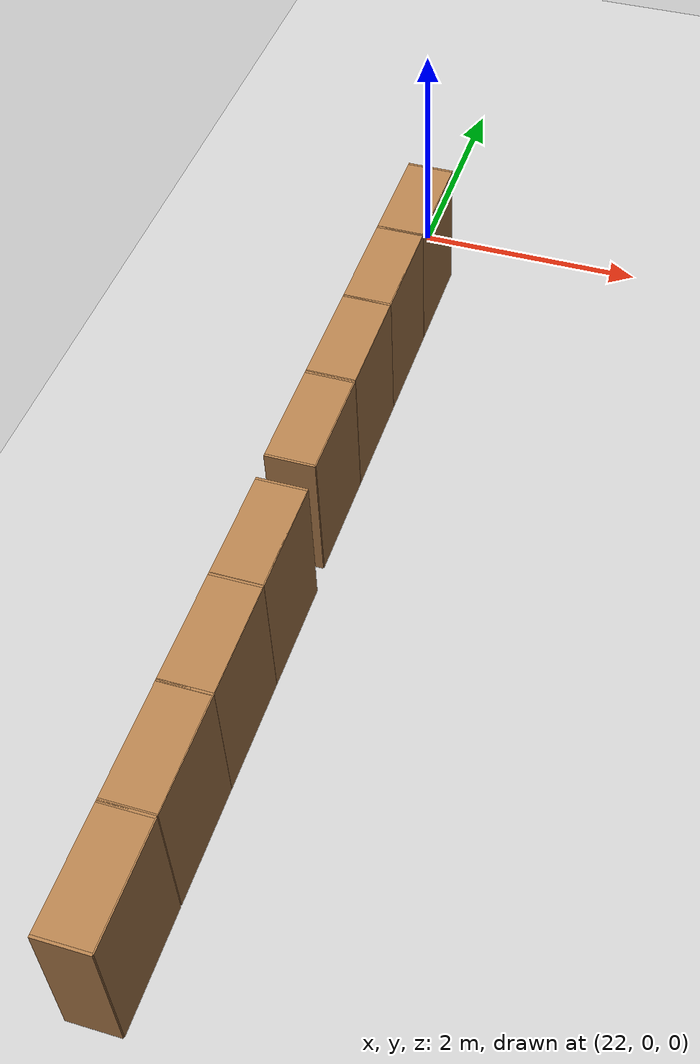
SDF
<sdf version="1.6">
 <world name="default">
  <model name="ground_plane">
   <static>1</static>
   <link name="link">
    <collision name="collision">
     <geometry><plane><normal>0 0 1</normal><size>100 100</size></plane></geometry>
     <surface><friction><ode><mu>100</mu><mu2>50</mu2></ode></friction></surface>
    </collision>
    <visual name="visual">
     <cast_shadows>0</cast_shadows>
     <geometry><plane><normal>0 0 1</normal><size>100 100</size></plane></geometry>
     <material>
      <script><uri>file://media/materials/scripts/gazebo.material</uri><name>Gazebo/Grey</name></script>
     </material>
    </visual>
   </link>
  </model>
  <model name="Bookself-4_clone_14_clone_3_clone_clone_1">
   <model name="Bookself-3">
    <model name="bookshelf_0">
     <static>1</static>
     <link name="link">
      <inertial><mass>1</mass></inertial>
      <collision name="back">
       <pose>0 0.005 0.6 0 -0 0</pose>
       <geometry><box><size>0.9 0.01 1.2</size></box></geometry>
      </collision>
      <visual name="visual1">
       <pose>0 0.005 0.6 0 -0 0</pose>
       <geometry><box><size>0.9 0.01 1.2</size></box></geometry>
       <material>
        <script><uri>file://media/materials/scripts/gazebo.material</uri><name>Gazebo/Wood</name></script>
       </material>
      </visual>
      <collision name="left_side">
       <pose>0.45 -0.195 0.6 0 -0 0</pose>
       <geometry><box><size>0.02 0.4 1.2</size></box></geometry>
      </collision>
      <visual name="visual2">
       <pose>0.45 -0.195 0.6 0 -0 0</pose>
       <geometry><box><size>0.02 0.4 1.2</size></box></geometry>
       <material>
        <script><uri>file://media/materials/scripts/gazebo.material</uri><name>Gazebo/Wood</name></script>
       </material>
      </visual>
      <collision name="right_side">
       <pose>-0.45 -0.195 0.6 0 -0 0</pose>
       <geometry><box><size>0.02 0.4 1.2</size></box></geometry>
      </collision>
      <visual name="visual3">
       <pose>-0.45 -0.195 0.6 0 -0 0</pose>
       <geometry><box><size>0.02 0.4 1.2</size></box></geometry>
       <material>
        <script><uri>file://media/materials/scripts/gazebo.material</uri><name>Gazebo/Wood</name></script>
       </material>
      </visual>
      <collision name="bottom">
       <pose>0 -0.195 0.03 0 -0 0</pose>
       <geometry><box><size>0.88 0.4 0.06</size></box></geometry>
      </collision>
      <visual name="visual4">
       <pose>0 -0.195 0.03 0 -0 0</pose>
       <geometry><box><size>0.88 0.4 0.06</size></box></geometry>
       <material>
        <script><uri>file://media/materials/scripts/gazebo.material</uri><name>Gazebo/Wood</name></script>
       </material>
      </visual>
      <collision name="top">
       <pose>0 -0.195 1.19 0 -0 0</pose>
       <geometry><box><size>0.88 0.4 0.02</size></box></geometry>
      </collision>
      <visual name="visual5">
       <pose>0 -0.195 1.19 0 -0 0</pose>
       <geometry><box><size>0.88 0.4 0.02</size></box></geometry>
       <material>
        <script><uri>file://media/materials/scripts/gazebo.material</uri><name>Gazebo/Wood</name></script>
       </material>
      </visual>
      <collision name="low_shelf">
       <pose>0 -0.195 0.43 0 -0 0</pose>
       <geometry><box><size>0.88 0.4 0.02</size></box></geometry>
      </collision>
      <visual name="visual6">
       <pose>0 -0.195 0.43 0 -0 0</pose>
       <geometry><box><size>0.88 0.4 0.02</size></box></geometry>
       <material>
        <script><uri>file://media/materials/scripts/gazebo.material</uri><name>Gazebo/Wood</name></script>
       </material>
      </visual>
      <collision name="high_shelf">
       <pose>0 -0.195 0.8 0 -0 0</pose>
       <geometry><box><size>0.88 0.4 0.02</size></box></geometry>
      </collision>
      <visual name="visual7">
       <pose>0 -0.195 0.8 0 -0 0</pose>
       <geometry><box><size>0.88 0.4 0.02</size></box></geometry>
       <material>
        <script><uri>file://media/materials/scripts/gazebo.material</uri><name>Gazebo/Wood</name></script>
       </material>
      </visual>
     </link>
     <pose>-0.903039 0 0 0 -0 0</pose>
    </model>
    <model name="bookshelf_1">
     <static>1</static>
     <link name="link">
      <inertial><mass>1</mass></inertial>
      <collision name="back">
       <pose>0 0.005 0.6 0 -0 0</pose>
       <geometry><box><size>0.9 0.01 1.2</size></box></geometry>
      </collision>
      <visual name="visual1">
       <pose>0 0.005 0.6 0 -0 0</pose>
       <geometry><box><size>0.9 0.01 1.2</size></box></geometry>
       <material>
        <script><uri>file://media/materials/scripts/gazebo.material</uri><name>Gazebo/Wood</name></script>
       </material>
      </visual>
      <collision name="left_side">
       <pose>0.45 -0.195 0.6 0 -0 0</pose>
       <geometry><box><size>0.02 0.4 1.2</size></box></geometry>
      </collision>
      <visual name="visual2">
       <pose>0.45 -0.195 0.6 0 -0 0</pose>
       <geometry><box><size>0.02 0.4 1.2</size></box></geometry>
       <material>
        <script><uri>file://media/materials/scripts/gazebo.material</uri><name>Gazebo/Wood</name></script>
       </material>
      </visual>
      <collision name="right_side">
       <pose>-0.45 -0.195 0.6 0 -0 0</pose>
       <geometry><box><size>0.02 0.4 1.2</size></box></geometry>
      </collision>
      <visual name="visual3">
       <pose>-0.45 -0.195 0.6 0 -0 0</pose>
       <geometry><box><size>0.02 0.4 1.2</size></box></geometry>
       <material>
        <script><uri>file://media/materials/scripts/gazebo.material</uri><name>Gazebo/Wood</name></script>
       </material>
      </visual>
      <collision name="bottom">
       <pose>0 -0.195 0.03 0 -0 0</pose>
       <geometry><box><size>0.88 0.4 0.06</size></box></geometry>
      </collision>
      <visual name="visual4">
       <pose>0 -0.195 0.03 0 -0 0</pose>
       <geometry><box><size>0.88 0.4 0.06</size></box></geometry>
       <material>
        <script><uri>file://media/materials/scripts/gazebo.material</uri><name>Gazebo/Wood</name></script>
       </material>
      </visual>
      <collision name="top">
       <pose>0 -0.195 1.19 0 -0 0</pose>
       <geometry><box><size>0.88 0.4 0.02</size></box></geometry>
      </collision>
      <visual name="visual5">
       <pose>0 -0.195 1.19 0 -0 0</pose>
       <geometry><box><size>0.88 0.4 0.02</size></box></geometry>
       <material>
        <script><uri>file://media/materials/scripts/gazebo.material</uri><name>Gazebo/Wood</name></script>
       </material>
      </visual>
      <collision name="low_shelf">
       <pose>0 -0.195 0.43 0 -0 0</pose>
       <geometry><box><size>0.88 0.4 0.02</size></box></geometry>
      </collision>
      <visual name="visual6">
       <pose>0 -0.195 0.43 0 -0 0</pose>
       <geometry><box><size>0.88 0.4 0.02</size></box></geometry>
       <material>
        <script><uri>file://media/materials/scripts/gazebo.material</uri><name>Gazebo/Wood</name></script>
       </material>
      </visual>
      <collision name="high_shelf">
       <pose>0 -0.195 0.8 0 -0 0</pose>
       <geometry><box><size>0.88 0.4 0.02</size></box></geometry>
      </collision>
      <visual name="visual7">
       <pose>0 -0.195 0.8 0 -0 0</pose>
       <geometry><box><size>0.88 0.4 0.02</size></box></geometry>
       <material>
        <script><uri>file://media/materials/scripts/gazebo.material</uri><name>Gazebo/Wood</name></script>
       </material>
      </visual>
     </link>
     <pose>0.000535 0 0 0 -0 0</pose>
    </model>
    <model name="bookshelf_1_clone">
     <static>1</static>
     <link name="link">
      <inertial><mass>1</mass></inertial>
      <collision name="back">
       <pose>0 0.005 0.6 0 -0 0</pose>
       <geometry><box><size>0.9 0.01 1.2</size></box></geometry>
      </collision>
      <visual name="visual1">
       <pose>0 0.005 0.6 0 -0 0</pose>
       <geometry><box><size>0.9 0.01 1.2</size></box></geometry>
       <material>
        <script><uri>file://media/materials/scripts/gazebo.material</uri><name>Gazebo/Wood</name></script>
       </material>
      </visual>
      <collision name="left_side">
       <pose>0.45 -0.195 0.6 0 -0 0</pose>
       <geometry><box><size>0.02 0.4 1.2</size></box></geometry>
      </collision>
      <visual name="visual2">
       <pose>0.45 -0.195 0.6 0 -0 0</pose>
       <geometry><box><size>0.02 0.4 1.2</size></box></geometry>
       <material>
        <script><uri>file://media/materials/scripts/gazebo.material</uri><name>Gazebo/Wood</name></script>
       </material>
      </visual>
      <collision name="right_side">
       <pose>-0.45 -0.195 0.6 0 -0 0</pose>
       <geometry><box><size>0.02 0.4 1.2</size></box></geometry>
      </collision>
      <visual name="visual3">
       <pose>-0.45 -0.195 0.6 0 -0 0</pose>
       <geometry><box><size>0.02 0.4 1.2</size></box></geometry>
       <material>
        <script><uri>file://media/materials/scripts/gazebo.material</uri><name>Gazebo/Wood</name></script>
       </material>
      </visual>
      <collision name="bottom">
       <pose>0 -0.195 0.03 0 -0 0</pose>
       <geometry><box><size>0.88 0.4 0.06</size></box></geometry>
      </collision>
      <visual name="visual4">
       <pose>0 -0.195 0.03 0 -0 0</pose>
       <geometry><box><size>0.88 0.4 0.06</size></box></geometry>
       <material>
        <script><uri>file://media/materials/scripts/gazebo.material</uri><name>Gazebo/Wood</name></script>
       </material>
      </visual>
      <collision name="top">
       <pose>0 -0.195 1.19 0 -0 0</pose>
       <geometry><box><size>0.88 0.4 0.02</size></box></geometry>
      </collision>
      <visual name="visual5">
       <pose>0 -0.195 1.19 0 -0 0</pose>
       <geometry><box><size>0.88 0.4 0.02</size></box></geometry>
       <material>
        <script><uri>file://media/materials/scripts/gazebo.material</uri><name>Gazebo/Wood</name></script>
       </material>
      </visual>
      <collision name="low_shelf">
       <pose>0 -0.195 0.43 0 -0 0</pose>
       <geometry><box><size>0.88 0.4 0.02</size></box></geometry>
      </collision>
      <visual name="visual6">
       <pose>0 -0.195 0.43 0 -0 0</pose>
       <geometry><box><size>0.88 0.4 0.02</size></box></geometry>
       <material>
        <script><uri>file://media/materials/scripts/gazebo.material</uri><name>Gazebo/Wood</name></script>
       </material>
      </visual>
      <collision name="high_shelf">
       <pose>0 -0.195 0.8 0 -0 0</pose>
       <geometry><box><size>0.88 0.4 0.02</size></box></geometry>
      </collision>
      <visual name="visual7">
       <pose>0 -0.195 0.8 0 -0 0</pose>
       <geometry><box><size>0.88 0.4 0.02</size></box></geometry>
       <material>
        <script><uri>file://media/materials/scripts/gazebo.material</uri><name>Gazebo/Wood</name></script>
       </material>
      </visual>
     </link>
     <pose>0.902502 0 0 0 -0 0</pose>
    </model>
    <static>1</static>
    <pose>-0.906894 3e-05 0 0 -0 0</pose>
   </model>
   <model name="bookshelf">
    <static>1</static>
    <link name="link">
     <inertial><mass>1</mass></inertial>
     <collision name="back">
      <pose>0 0.005 0.6 0 -0 0</pose>
      <geometry><box><size>0.9 0.01 1.2</size></box></geometry>
     </collision>
     <visual name="visual1">
      <pose>0 0.005 0.6 0 -0 0</pose>
      <geometry><box><size>0.9 0.01 1.2</size></box></geometry>
      <material>
       <script><uri>file://media/materials/scripts/gazebo.material</uri><name>Gazebo/Wood</name></script>
      </material>
     </visual>
     <collision name="left_side">
      <pose>0.45 -0.195 0.6 0 -0 0</pose>
      <geometry><box><size>0.02 0.4 1.2</size></box></geometry>
     </collision>
     <visual name="visual2">
      <pose>0.45 -0.195 0.6 0 -0 0</pose>
      <geometry><box><size>0.02 0.4 1.2</size></box></geometry>
      <material>
       <script><uri>file://media/materials/scripts/gazebo.material</uri><name>Gazebo/Wood</name></script>
      </material>
     </visual>
     <collision name="right_side">
      <pose>-0.45 -0.195 0.6 0 -0 0</pose>
      <geometry><box><size>0.02 0.4 1.2</size></box></geometry>
     </collision>
     <visual name="visual3">
      <pose>-0.45 -0.195 0.6 0 -0 0</pose>
      <geometry><box><size>0.02 0.4 1.2</size></box></geometry>
      <material>
       <script><uri>file://media/materials/scripts/gazebo.material</uri><name>Gazebo/Wood</name></script>
      </material>
     </visual>
     <collision name="bottom">
      <pose>0 -0.195 0.03 0 -0 0</pose>
      <geometry><box><size>0.88 0.4 0.06</size></box></geometry>
     </collision>
     <visual name="visual4">
      <pose>0 -0.195 0.03 0 -0 0</pose>
      <geometry><box><size>0.88 0.4 0.06</size></box></geometry>
      <material>
       <script><uri>file://media/materials/scripts/gazebo.material</uri><name>Gazebo/Wood</name></script>
      </material>
     </visual>
     <collision name="top">
      <pose>0 -0.195 1.19 0 -0 0</pose>
      <geometry><box><size>0.88 0.4 0.02</size></box></geometry>
     </collision>
     <visual name="visual5">
      <pose>0 -0.195 1.19 0 -0 0</pose>
      <geometry><box><size>0.88 0.4 0.02</size></box></geometry>
      <material>
       <script><uri>file://media/materials/scripts/gazebo.material</uri><name>Gazebo/Wood</name></script>
      </material>
     </visual>
     <collision name="low_shelf">
      <pose>0 -0.195 0.43 0 -0 0</pose>
      <geometry><box><size>0.88 0.4 0.02</size></box></geometry>
     </collision>
     <visual name="visual6">
      <pose>0 -0.195 0.43 0 -0 0</pose>
      <geometry><box><size>0.88 0.4 0.02</size></box></geometry>
      <material>
       <script><uri>file://media/materials/scripts/gazebo.material</uri><name>Gazebo/Wood</name></script>
      </material>
     </visual>
     <collision name="high_shelf">
      <pose>0 -0.195 0.8 0 -0 0</pose>
      <geometry><box><size>0.88 0.4 0.02</size></box></geometry>
     </collision>
     <visual name="visual7">
      <pose>0 -0.195 0.8 0 -0 0</pose>
      <geometry><box><size>0.88 0.4 0.02</size></box></geometry>
      <material>
       <script><uri>file://media/materials/scripts/gazebo.material</uri><name>Gazebo/Wood</name></script>
      </material>
     </visual>
    </link>
    <pose>0.906808 3e-05 0 0 -0 0</pose>
   </model>
   <static>0</static>
   <pose>22.3516 -2.71108 0 0 0 -1.5707</pose>
  </model>
  <model name="Bookself-4_clone_14_clone_3_clone_clone_1_clone">
   <model name="Bookself-3">
    <model name="bookshelf_0">
     <static>1</static>
     <link name="link">
      <inertial><mass>1</mass></inertial>
      <collision name="back">
       <pose>0 0.005 0.6 0 -0 0</pose>
       <geometry><box><size>0.9 0.01 1.2</size></box></geometry>
      </collision>
      <visual name="visual1">
       <pose>0 0.005 0.6 0 -0 0</pose>
       <geometry><box><size>0.9 0.01 1.2</size></box></geometry>
       <material>
        <script><uri>file://media/materials/scripts/gazebo.material</uri><name>Gazebo/Wood</name></script>
       </material>
      </visual>
      <collision name="left_side">
       <pose>0.45 -0.195 0.6 0 -0 0</pose>
       <geometry><box><size>0.02 0.4 1.2</size></box></geometry>
      </collision>
      <visual name="visual2">
       <pose>0.45 -0.195 0.6 0 -0 0</pose>
       <geometry><box><size>0.02 0.4 1.2</size></box></geometry>
       <material>
        <script><uri>file://media/materials/scripts/gazebo.material</uri><name>Gazebo/Wood</name></script>
       </material>
      </visual>
      <collision name="right_side">
       <pose>-0.45 -0.195 0.6 0 -0 0</pose>
       <geometry><box><size>0.02 0.4 1.2</size></box></geometry>
      </collision>
      <visual name="visual3">
       <pose>-0.45 -0.195 0.6 0 -0 0</pose>
       <geometry><box><size>0.02 0.4 1.2</size></box></geometry>
       <material>
        <script><uri>file://media/materials/scripts/gazebo.material</uri><name>Gazebo/Wood</name></script>
       </material>
      </visual>
      <collision name="bottom">
       <pose>0 -0.195 0.03 0 -0 0</pose>
       <geometry><box><size>0.88 0.4 0.06</size></box></geometry>
      </collision>
      <visual name="visual4">
       <pose>0 -0.195 0.03 0 -0 0</pose>
       <geometry><box><size>0.88 0.4 0.06</size></box></geometry>
       <material>
        <script><uri>file://media/materials/scripts/gazebo.material</uri><name>Gazebo/Wood</name></script>
       </material>
      </visual>
      <collision name="top">
       <pose>0 -0.195 1.19 0 -0 0</pose>
       <geometry><box><size>0.88 0.4 0.02</size></box></geometry>
      </collision>
      <visual name="visual5">
       <pose>0 -0.195 1.19 0 -0 0</pose>
       <geometry><box><size>0.88 0.4 0.02</size></box></geometry>
       <material>
        <script><uri>file://media/materials/scripts/gazebo.material</uri><name>Gazebo/Wood</name></script>
       </material>
      </visual>
      <collision name="low_shelf">
       <pose>0 -0.195 0.43 0 -0 0</pose>
       <geometry><box><size>0.88 0.4 0.02</size></box></geometry>
      </collision>
      <visual name="visual6">
       <pose>0 -0.195 0.43 0 -0 0</pose>
       <geometry><box><size>0.88 0.4 0.02</size></box></geometry>
       <material>
        <script><uri>file://media/materials/scripts/gazebo.material</uri><name>Gazebo/Wood</name></script>
       </material>
      </visual>
      <collision name="high_shelf">
       <pose>0 -0.195 0.8 0 -0 0</pose>
       <geometry><box><size>0.88 0.4 0.02</size></box></geometry>
      </collision>
      <visual name="visual7">
       <pose>0 -0.195 0.8 0 -0 0</pose>
       <geometry><box><size>0.88 0.4 0.02</size></box></geometry>
       <material>
        <script><uri>file://media/materials/scripts/gazebo.material</uri><name>Gazebo/Wood</name></script>
       </material>
      </visual>
     </link>
     <pose>-0.903039 0 0 0 -0 0</pose>
    </model>
    <model name="bookshelf_1">
     <static>1</static>
     <link name="link">
      <inertial><mass>1</mass></inertial>
      <collision name="back">
       <pose>0 0.005 0.6 0 -0 0</pose>
       <geometry><box><size>0.9 0.01 1.2</size></box></geometry>
      </collision>
      <visual name="visual1">
       <pose>0 0.005 0.6 0 -0 0</pose>
       <geometry><box><size>0.9 0.01 1.2</size></box></geometry>
       <material>
        <script><uri>file://media/materials/scripts/gazebo.material</uri><name>Gazebo/Wood</name></script>
       </material>
      </visual>
      <collision name="left_side">
       <pose>0.45 -0.195 0.6 0 -0 0</pose>
       <geometry><box><size>0.02 0.4 1.2</size></box></geometry>
      </collision>
      <visual name="visual2">
       <pose>0.45 -0.195 0.6 0 -0 0</pose>
       <geometry><box><size>0.02 0.4 1.2</size></box></geometry>
       <material>
        <script><uri>file://media/materials/scripts/gazebo.material</uri><name>Gazebo/Wood</name></script>
       </material>
      </visual>
      <collision name="right_side">
       <pose>-0.45 -0.195 0.6 0 -0 0</pose>
       <geometry><box><size>0.02 0.4 1.2</size></box></geometry>
      </collision>
      <visual name="visual3">
       <pose>-0.45 -0.195 0.6 0 -0 0</pose>
       <geometry><box><size>0.02 0.4 1.2</size></box></geometry>
       <material>
        <script><uri>file://media/materials/scripts/gazebo.material</uri><name>Gazebo/Wood</name></script>
       </material>
      </visual>
      <collision name="bottom">
       <pose>0 -0.195 0.03 0 -0 0</pose>
       <geometry><box><size>0.88 0.4 0.06</size></box></geometry>
      </collision>
      <visual name="visual4">
       <pose>0 -0.195 0.03 0 -0 0</pose>
       <geometry><box><size>0.88 0.4 0.06</size></box></geometry>
       <material>
        <script><uri>file://media/materials/scripts/gazebo.material</uri><name>Gazebo/Wood</name></script>
       </material>
      </visual>
      <collision name="top">
       <pose>0 -0.195 1.19 0 -0 0</pose>
       <geometry><box><size>0.88 0.4 0.02</size></box></geometry>
      </collision>
      <visual name="visual5">
       <pose>0 -0.195 1.19 0 -0 0</pose>
       <geometry><box><size>0.88 0.4 0.02</size></box></geometry>
       <material>
        <script><uri>file://media/materials/scripts/gazebo.material</uri><name>Gazebo/Wood</name></script>
       </material>
      </visual>
      <collision name="low_shelf">
       <pose>0 -0.195 0.43 0 -0 0</pose>
       <geometry><box><size>0.88 0.4 0.02</size></box></geometry>
      </collision>
      <visual name="visual6">
       <pose>0 -0.195 0.43 0 -0 0</pose>
       <geometry><box><size>0.88 0.4 0.02</size></box></geometry>
       <material>
        <script><uri>file://media/materials/scripts/gazebo.material</uri><name>Gazebo/Wood</name></script>
       </material>
      </visual>
      <collision name="high_shelf">
       <pose>0 -0.195 0.8 0 -0 0</pose>
       <geometry><box><size>0.88 0.4 0.02</size></box></geometry>
      </collision>
      <visual name="visual7">
       <pose>0 -0.195 0.8 0 -0 0</pose>
       <geometry><box><size>0.88 0.4 0.02</size></box></geometry>
       <material>
        <script><uri>file://media/materials/scripts/gazebo.material</uri><name>Gazebo/Wood</name></script>
       </material>
      </visual>
     </link>
     <pose>0.000535 0 0 0 -0 0</pose>
    </model>
    <model name="bookshelf_1_clone">
     <static>1</static>
     <link name="link">
      <inertial><mass>1</mass></inertial>
      <collision name="back">
       <pose>0 0.005 0.6 0 -0 0</pose>
       <geometry><box><size>0.9 0.01 1.2</size></box></geometry>
      </collision>
      <visual name="visual1">
       <pose>0 0.005 0.6 0 -0 0</pose>
       <geometry><box><size>0.9 0.01 1.2</size></box></geometry>
       <material>
        <script><uri>file://media/materials/scripts/gazebo.material</uri><name>Gazebo/Wood</name></script>
       </material>
      </visual>
      <collision name="left_side">
       <pose>0.45 -0.195 0.6 0 -0 0</pose>
       <geometry><box><size>0.02 0.4 1.2</size></box></geometry>
      </collision>
      <visual name="visual2">
       <pose>0.45 -0.195 0.6 0 -0 0</pose>
       <geometry><box><size>0.02 0.4 1.2</size></box></geometry>
       <material>
        <script><uri>file://media/materials/scripts/gazebo.material</uri><name>Gazebo/Wood</name></script>
       </material>
      </visual>
      <collision name="right_side">
       <pose>-0.45 -0.195 0.6 0 -0 0</pose>
       <geometry><box><size>0.02 0.4 1.2</size></box></geometry>
      </collision>
      <visual name="visual3">
       <pose>-0.45 -0.195 0.6 0 -0 0</pose>
       <geometry><box><size>0.02 0.4 1.2</size></box></geometry>
       <material>
        <script><uri>file://media/materials/scripts/gazebo.material</uri><name>Gazebo/Wood</name></script>
       </material>
      </visual>
      <collision name="bottom">
       <pose>0 -0.195 0.03 0 -0 0</pose>
       <geometry><box><size>0.88 0.4 0.06</size></box></geometry>
      </collision>
      <visual name="visual4">
       <pose>0 -0.195 0.03 0 -0 0</pose>
       <geometry><box><size>0.88 0.4 0.06</size></box></geometry>
       <material>
        <script><uri>file://media/materials/scripts/gazebo.material</uri><name>Gazebo/Wood</name></script>
       </material>
      </visual>
      <collision name="top">
       <pose>0 -0.195 1.19 0 -0 0</pose>
       <geometry><box><size>0.88 0.4 0.02</size></box></geometry>
      </collision>
      <visual name="visual5">
       <pose>0 -0.195 1.19 0 -0 0</pose>
       <geometry><box><size>0.88 0.4 0.02</size></box></geometry>
       <material>
        <script><uri>file://media/materials/scripts/gazebo.material</uri><name>Gazebo/Wood</name></script>
       </material>
      </visual>
      <collision name="low_shelf">
       <pose>0 -0.195 0.43 0 -0 0</pose>
       <geometry><box><size>0.88 0.4 0.02</size></box></geometry>
      </collision>
      <visual name="visual6">
       <pose>0 -0.195 0.43 0 -0 0</pose>
       <geometry><box><size>0.88 0.4 0.02</size></box></geometry>
       <material>
        <script><uri>file://media/materials/scripts/gazebo.material</uri><name>Gazebo/Wood</name></script>
       </material>
      </visual>
      <collision name="high_shelf">
       <pose>0 -0.195 0.8 0 -0 0</pose>
       <geometry><box><size>0.88 0.4 0.02</size></box></geometry>
      </collision>
      <visual name="visual7">
       <pose>0 -0.195 0.8 0 -0 0</pose>
       <geometry><box><size>0.88 0.4 0.02</size></box></geometry>
       <material>
        <script><uri>file://media/materials/scripts/gazebo.material</uri><name>Gazebo/Wood</name></script>
       </material>
      </visual>
     </link>
     <pose>0.902502 0 0 0 -0 0</pose>
    </model>
    <static>1</static>
    <pose>-0.906894 3e-05 0 0 -0 0</pose>
   </model>
   <model name="bookshelf">
    <static>1</static>
    <link name="link">
     <inertial><mass>1</mass></inertial>
     <collision name="back">
      <pose>0 0.005 0.6 0 -0 0</pose>
      <geometry><box><size>0.9 0.01 1.2</size></box></geometry>
     </collision>
     <visual name="visual1">
      <pose>0 0.005 0.6 0 -0 0</pose>
      <geometry><box><size>0.9 0.01 1.2</size></box></geometry>
      <material>
       <script><uri>file://media/materials/scripts/gazebo.material</uri><name>Gazebo/Wood</name></script>
      </material>
     </visual>
     <collision name="left_side">
      <pose>0.45 -0.195 0.6 0 -0 0</pose>
      <geometry><box><size>0.02 0.4 1.2</size></box></geometry>
     </collision>
     <visual name="visual2">
      <pose>0.45 -0.195 0.6 0 -0 0</pose>
      <geometry><box><size>0.02 0.4 1.2</size></box></geometry>
      <material>
       <script><uri>file://media/materials/scripts/gazebo.material</uri><name>Gazebo/Wood</name></script>
      </material>
     </visual>
     <collision name="right_side">
      <pose>-0.45 -0.195 0.6 0 -0 0</pose>
      <geometry><box><size>0.02 0.4 1.2</size></box></geometry>
     </collision>
     <visual name="visual3">
      <pose>-0.45 -0.195 0.6 0 -0 0</pose>
      <geometry><box><size>0.02 0.4 1.2</size></box></geometry>
      <material>
       <script><uri>file://media/materials/scripts/gazebo.material</uri><name>Gazebo/Wood</name></script>
      </material>
     </visual>
     <collision name="bottom">
      <pose>0 -0.195 0.03 0 -0 0</pose>
      <geometry><box><size>0.88 0.4 0.06</size></box></geometry>
     </collision>
     <visual name="visual4">
      <pose>0 -0.195 0.03 0 -0 0</pose>
      <geometry><box><size>0.88 0.4 0.06</size></box></geometry>
      <material>
       <script><uri>file://media/materials/scripts/gazebo.material</uri><name>Gazebo/Wood</name></script>
      </material>
     </visual>
     <collision name="top">
      <pose>0 -0.195 1.19 0 -0 0</pose>
      <geometry><box><size>0.88 0.4 0.02</size></box></geometry>
     </collision>
     <visual name="visual5">
      <pose>0 -0.195 1.19 0 -0 0</pose>
      <geometry><box><size>0.88 0.4 0.02</size></box></geometry>
      <material>
       <script><uri>file://media/materials/scripts/gazebo.material</uri><name>Gazebo/Wood</name></script>
      </material>
     </visual>
     <collision name="low_shelf">
      <pose>0 -0.195 0.43 0 -0 0</pose>
      <geometry><box><size>0.88 0.4 0.02</size></box></geometry>
     </collision>
     <visual name="visual6">
      <pose>0 -0.195 0.43 0 -0 0</pose>
      <geometry><box><size>0.88 0.4 0.02</size></box></geometry>
      <material>
       <script><uri>file://media/materials/scripts/gazebo.material</uri><name>Gazebo/Wood</name></script>
      </material>
     </visual>
     <collision name="high_shelf">
      <pose>0 -0.195 0.8 0 -0 0</pose>
      <geometry><box><size>0.88 0.4 0.02</size></box></geometry>
     </collision>
     <visual name="visual7">
      <pose>0 -0.195 0.8 0 -0 0</pose>
      <geometry><box><size>0.88 0.4 0.02</size></box></geometry>
      <material>
       <script><uri>file://media/materials/scripts/gazebo.material</uri><name>Gazebo/Wood</name></script>
      </material>
     </visual>
    </link>
    <pose>0.906808 3e-05 0 0 -0 0</pose>
   </model>
   <static>0</static>
   <pose>22.3754 -6.55833 0 0 0 -1.5707</pose>
  </model>
 </world>
</sdf>
